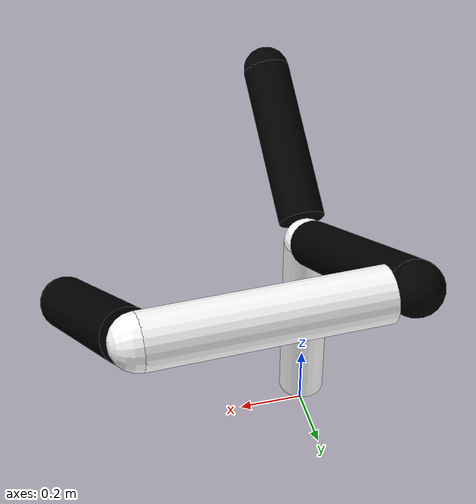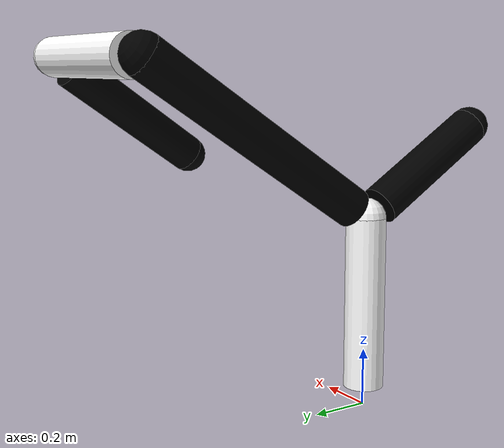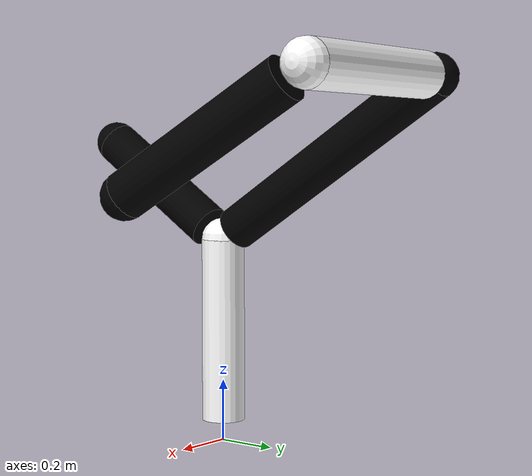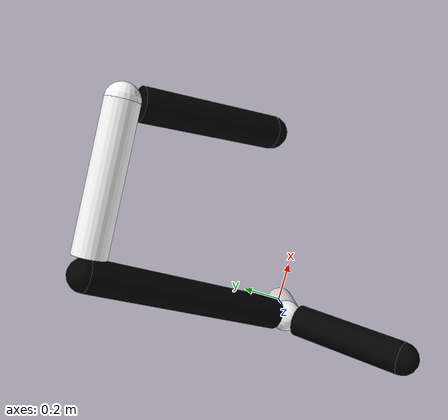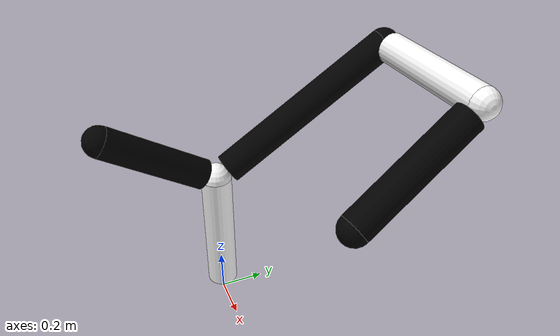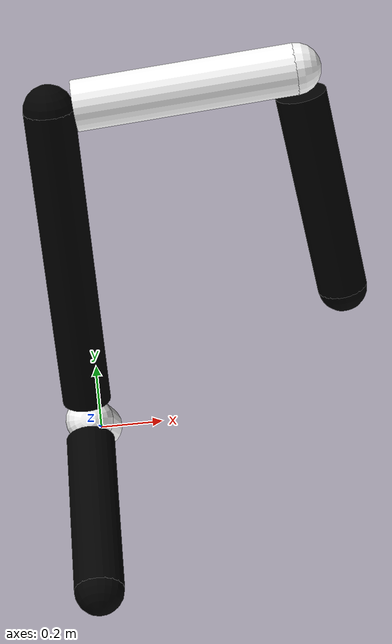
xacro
<?xml version="1.0"?>
<robot xmlns:xacro="http://www.ros.org/wiki/xacro" name="my_first">

    <xacro:macro
        name="link"
        params="name size color parent:='none' orientation:='0 0 0'"
    >
        <xacro:if value="${parent != 'none'}">
            <joint name="end_${name}_link" type="continuous">
                <parent link="connector_${parent}_link"/>
                <child link="${name}_link"/>
                <origin rpy="${orientation}" xyz="0 0 0"/>
            </joint>
        </xacro:if>

        <link name="${name}_link">
            <visual>
                <geometry>
                    <cylinder length="${size}" radius="${width}"/>
                </geometry>
                <origin rpy="0 0 0"  xyz="0 0 ${size/2.+width}"/>
                <material name="${color}"/>
            </visual>

            <collision>
                <geometry>
                    <cylinder length="${size}" radius="${width}"/>
                </geometry>
                <origin rpy="0 0 0"  xyz="0 0 ${size/2.+width}"/>
            </collision>

            <!-- For gazebo, every link must have inertial -->
            <inertial>
                <mass value="10"/>
                <inertia ixx="0.4" ixy="0.0" ixz="0.0"
                         iyy="0.4" iyz="0.0" izz="0.2"/>
            </inertial>
        </link>

        <joint name="${name}_rigidity" type="fixed">
            <parent link="${name}_link"/>
            <child link="connector_${name}_link"/>
            <origin xyz="0 0 ${size+width}"/>
        </joint>

        <link name="connector_${name}_link">
            <visual>
                <geometry>
                    <sphere radius="${width}"/>
                </geometry>
                <origin rpy="0 0 0" xyz="0 0 0"/>
                <material name="${color}"/>
            </visual>

            <collision>
                <geometry>
                    <sphere radius="${width}"/>
                </geometry>
                <origin rpy="0 0 0" xyz="0 0 0"/>
            </collision>

            <inertial>
                <mass value="10"/>
                <inertia ixx="0.4" ixy="0.0" ixz="0.0"
                                   iyy="0.4" iyz="0.0"
                                             izz="0.2"/>
            </inertial>
        </link>
    </xacro:macro>

    <material name="black">
        <color rgba="0 0 0 1"/>
    </material>

    <material name="white">
        <color rgba="1 1 1 1"/>
    </material>

    <xacro:property name="width" value="0.07" />

    <!-- root link must not have inertia -->
    <link name="world"/>
    <joint name="base_to_world" type="fixed">
        <parent link="world"/>
        <child  link="base_link"/>
    </joint>

    <xacro:link name="base"
                size="0.6" color="white"/>

    <xacro:link name="first"  parent="base"
                orientation="-1. 0 0"
                size="0.9"  color="black"/>

    <xacro:link name="other" parent="base"
                orientation="1. 0 0"
                size="0.5"  color="black"/>

    <xacro:link name="second" parent="first"
                orientation="0. 1.5 0"
                size="0.6" color="white"/>

    <xacro:link name="third"  parent="second"
                orientation="0. 1.5 0"
                size="0.6" color="black"/>
</robot>
